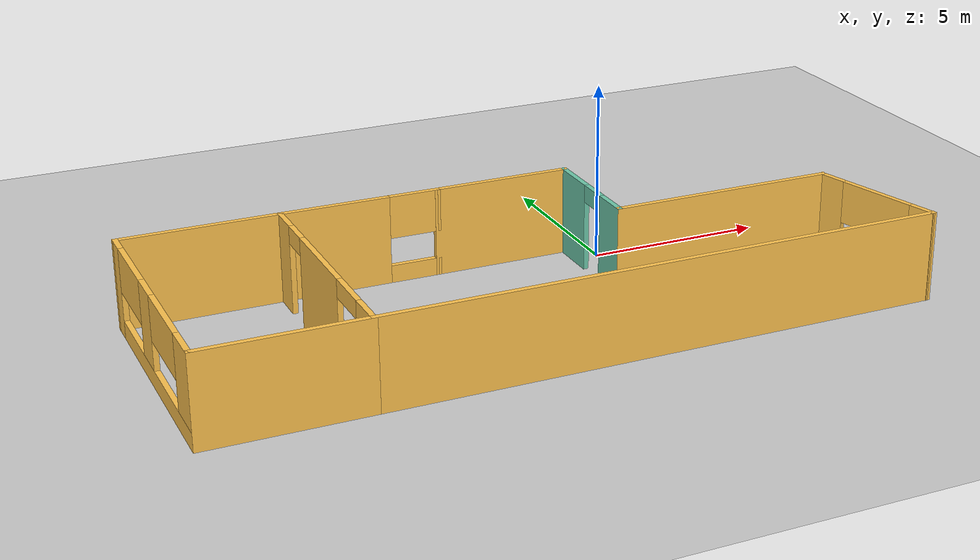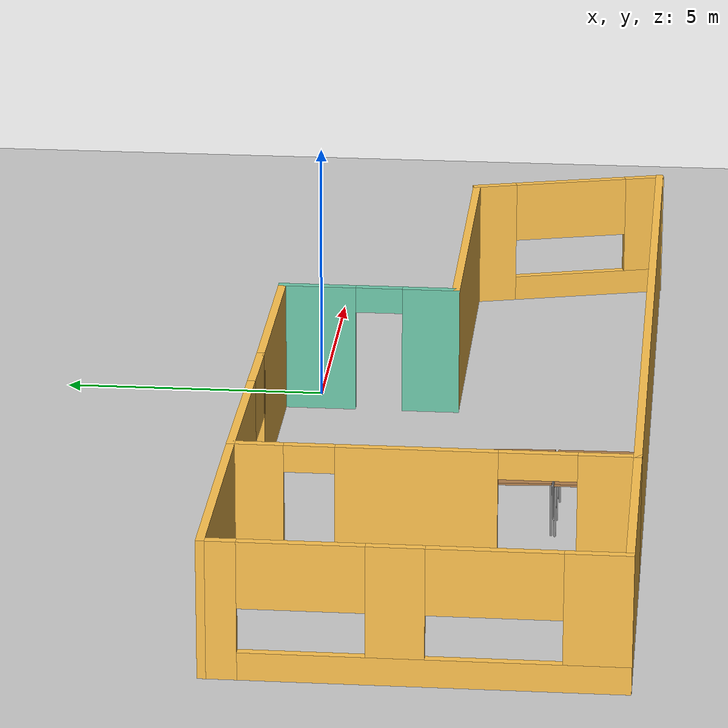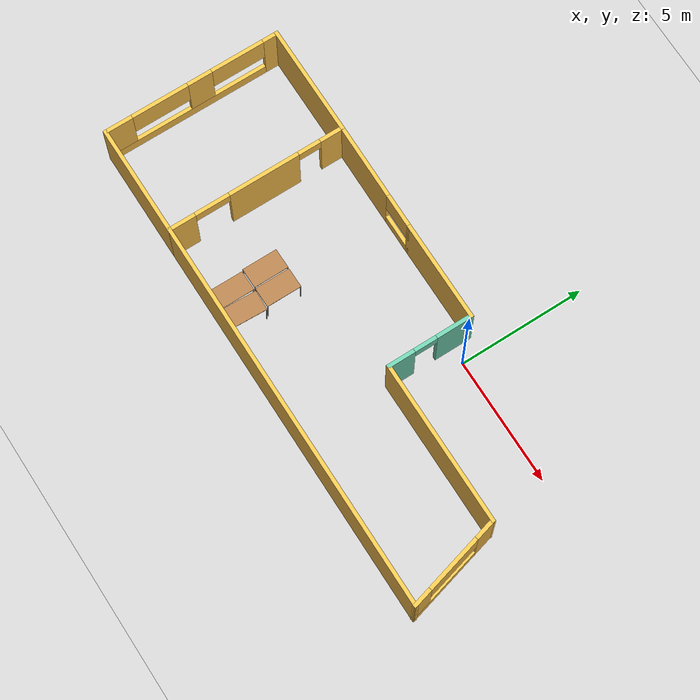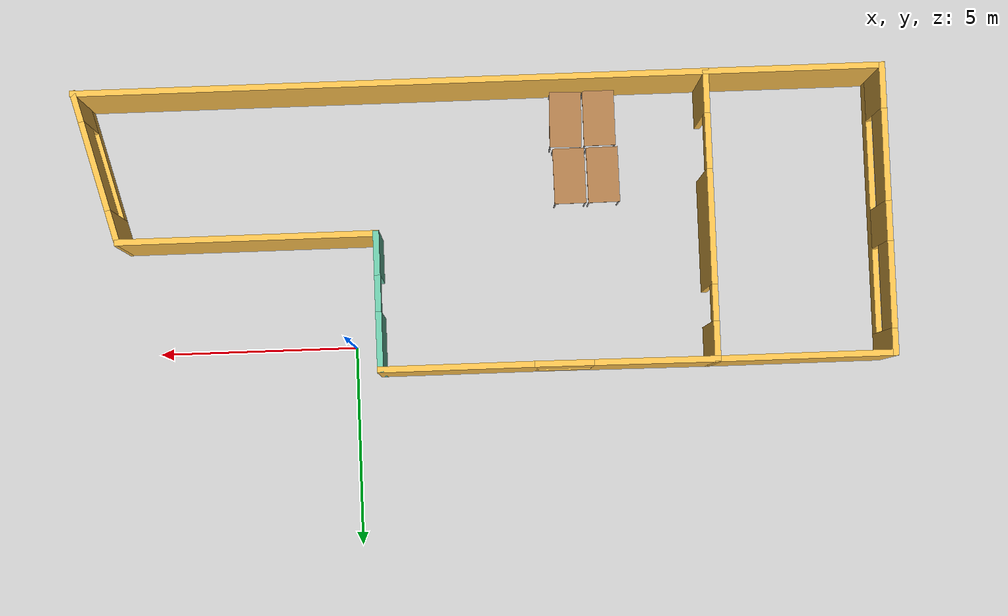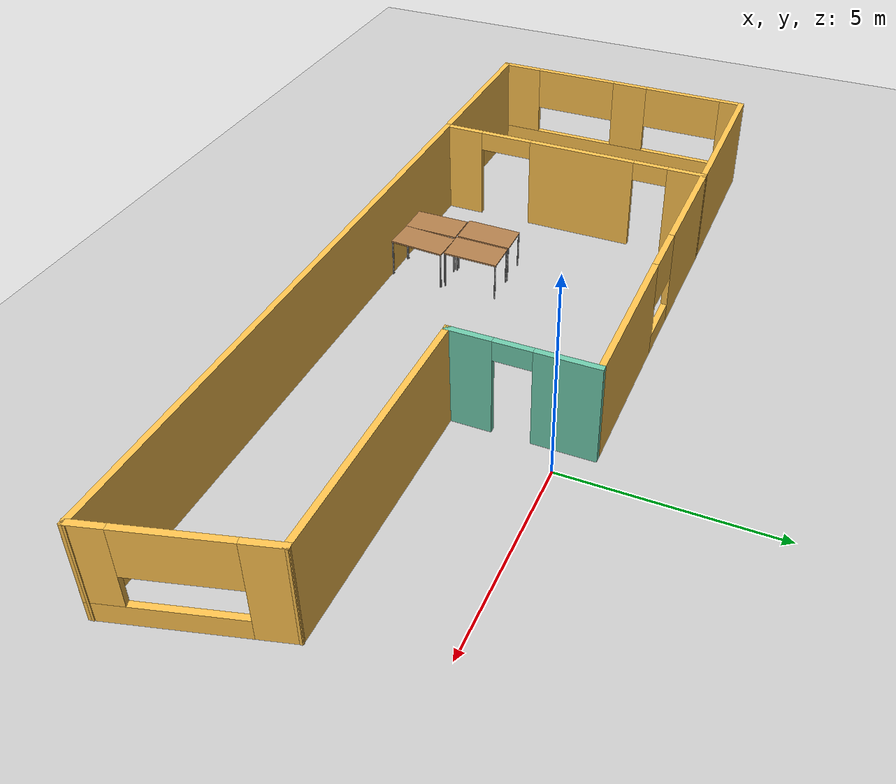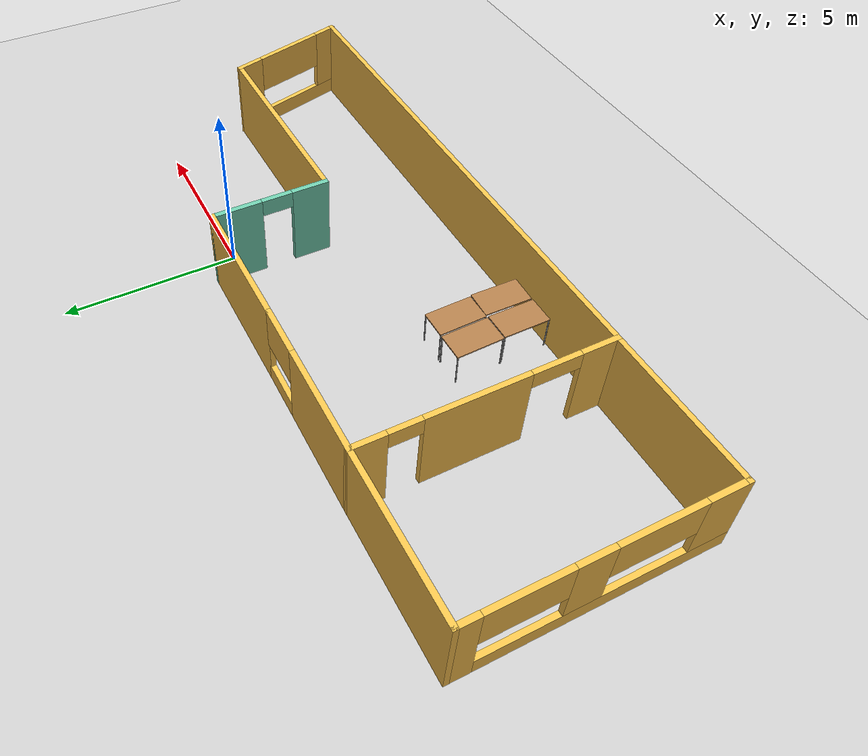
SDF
<sdf version="1.6">
 <world name="default">
  <light name="sun" type="directional">
   <pose>0 0 10 0 -0 0</pose>
   <diffuse>0.8 0.8 0.8 1</diffuse>
   <specular>0.1 0.1 0.1 1</specular>
   <attenuation>
    <range>1000</range>
    <constant>0.9</constant>
    <linear>0.01</linear>
    <quadratic>0.001</quadratic>
   </attenuation>
   <direction>-0.5 0.5 -1</direction>
  </light>
  <model name="ground_plane">
   <static>1</static>
   <link name="link">
    <collision name="collision">
     <geometry><plane><normal>0 0 1</normal><size>100 100</size></plane></geometry>
     <surface><friction><ode><mu>100</mu><mu2>50</mu2></ode></friction></surface>
    </collision>
    <visual name="visual">
     <cast_shadows>0</cast_shadows>
     <geometry><plane><normal>0 0 1</normal><size>100 100</size></plane></geometry>
     <material>
      <script><uri>file://media/materials/scripts/gazebo.material</uri><name>Gazebo/Grey</name></script>
     </material>
    </visual>
   </link>
  </model>
  <gravity>0 0 -9.8</gravity>
  <magnetic_field>6e-06 2.3e-05 -4.2e-05</magnetic_field>
  <atmosphere type="adiabatic"/>
  <physics name="default_physics" default="0" type="ode">
   <max_step_size>0.001</max_step_size>
   <real_time_factor>1</real_time_factor>
   <real_time_update_rate>1000</real_time_update_rate>
  </physics>
  <scene><ambient>0.4 0.4 0.4 1</ambient><background>0.7 0.7 0.7 1</background><shadows>1</shadows></scene>
  <spherical_coordinates>
   <surface_model>EARTH_WGS84</surface_model>
   <latitude_deg>0</latitude_deg>
   <longitude_deg>0</longitude_deg>
   <elevation>0</elevation>
   <heading_deg>0</heading_deg>
  </spherical_coordinates>
  <model name="simLab">
   <pose>-3.319 -2.84094 0 0 -0 0</pose>
   <link name="Wall_0">
    <collision name="Wall_0_Collision">
     <geometry><box><size>4 0.15 2.5</size></box></geometry>
     <pose>0 0 1.25 0 -0 0</pose>
    </collision>
    <visual name="Wall_0_Visual">
     <pose>0 0 1.25 0 -0 0</pose>
     <geometry><box><size>4 0.15 2.5</size></box></geometry>
     <material>
      <script><uri>file://media/materials/scripts/gazebo.material</uri><name>Gazebo/Grey</name></script>
      <ambient>1 0.764706 0.305882 1</ambient>
     </material>
    </visual>
    <pose>0.695119 3.52698 0 0 -0 0</pose>
   </link>
   <link name="Wall_1">
    <pose>2.62012 1.85198 0 0 0 -1.5708</pose>
    <visual name="Wall_1_Visual_0">
     <pose>-1.00222 0 1.25 0 -0 0</pose>
     <geometry><box><size>1.49556 0.15 2.5</size></box></geometry>
     <material>
      <script><uri>file://media/materials/scripts/gazebo.material</uri><name>Gazebo/Grey</name></script>
      <ambient>0.435294 0.796078 0.67451 1</ambient>
     </material>
    </visual>
    <collision name="Wall_1_Collision_0">
     <geometry><box><size>1.49556 0.15 2.5</size></box></geometry>
     <pose>-1.00222 0 1.25 0 -0 0</pose>
    </collision>
    <visual name="Wall_1_Visual_1">
     <pose>1.19778 0 1.25 0 -0 0</pose>
     <geometry><box><size>1.10444 0.15 2.5</size></box></geometry>
     <material>
      <script><uri>file://media/materials/scripts/gazebo.material</uri><name>Gazebo/Grey</name></script>
      <ambient>0.435294 0.796078 0.67451 1</ambient>
     </material>
    </visual>
    <collision name="Wall_1_Collision_1">
     <geometry><box><size>1.10444 0.15 2.5</size></box></geometry>
     <pose>1.19778 0 1.25 0 -0 0</pose>
    </collision>
    <visual name="Wall_1_Visual_2">
     <pose>0.195562 0 2.25 0 -0 0</pose>
     <geometry><box><size>0.9 0.15 0.5</size></box></geometry>
     <material>
      <script><uri>file://media/materials/scripts/gazebo.material</uri><name>Gazebo/Grey</name></script>
      <ambient>0.435294 0.796078 0.67451 1</ambient>
     </material>
    </visual>
    <collision name="Wall_1_Collision_2">
     <geometry><box><size>0.9 0.15 0.5</size></box></geometry>
     <pose>0.195562 0 2.25 0 -0 0</pose>
    </collision>
   </link>
   <link name="Wall_10">
    <collision name="Wall_10_Collision">
     <geometry><box><size>4.5 0.15 2.5</size></box></geometry>
     <pose>0 0 1.25 0 -0 0</pose>
    </collision>
    <visual name="Wall_10_Visual">
     <pose>0 0 1.25 0 -0 0</pose>
     <geometry><box><size>4.5 0.15 2.5</size></box></geometry>
     <material>
      <script><uri>file://media/materials/scripts/gazebo.material</uri><name>Gazebo/Grey</name></script>
      <ambient>1 0.764706 0.305882 1</ambient>
     </material>
    </visual>
    <pose>-7.80843 -3.54184 0 0 -0 0</pose>
   </link>
   <link name="Wall_2">
    <collision name="Wall_2_Collision">
     <geometry><box><size>6.5 0.15 2.5</size></box></geometry>
     <pose>0 0 1.25 0 -0 0</pose>
    </collision>
    <visual name="Wall_2_Visual">
     <pose>0 0 1.25 0 -0 0</pose>
     <geometry><box><size>6.5 0.15 2.5</size></box></geometry>
     <material>
      <script><uri>file://media/materials/scripts/gazebo.material</uri><name>Gazebo/Grey</name></script>
      <ambient>1 0.764706 0.305882 1</ambient>
     </material>
    </visual>
    <pose>5.79512 0.176978 0 0 -0 0</pose>
   </link>
   <link name="Wall_3">
    <pose>9.46835 -1.68243 0 0 0 -1.309</pose>
    <visual name="Wall_3_Visual_0">
     <pose>-1.551 0 1.25 0 -0 0</pose>
     <geometry><box><size>0.897996 0.15 2.5</size></box></geometry>
     <material>
      <script><uri>file://media/materials/scripts/gazebo.material</uri><name>Gazebo/Grey</name></script>
      <ambient>1 0.764706 0.305882 1</ambient>
     </material>
    </visual>
    <collision name="Wall_3_Collision_0">
     <geometry><box><size>0.897996 0.15 2.5</size></box></geometry>
     <pose>-1.551 0 1.25 0 -0 0</pose>
    </collision>
    <visual name="Wall_3_Visual_1">
     <pose>0.448998 0 0.25 0 -0 0</pose>
     <geometry><box><size>3.102 0.15 0.5</size></box></geometry>
     <material>
      <script><uri>file://media/materials/scripts/gazebo.material</uri><name>Gazebo/Grey</name></script>
      <ambient>1 0.764706 0.305882 1</ambient>
     </material>
    </visual>
    <collision name="Wall_3_Collision_1">
     <geometry><box><size>3.102 0.15 0.5</size></box></geometry>
     <pose>0.448998 0 0.25 0 -0 0</pose>
    </collision>
    <visual name="Wall_3_Visual_2">
     <pose>1.59736 0 1.5 0 -0 0</pose>
     <geometry><box><size>0.805283 0.15 2</size></box></geometry>
     <material>
      <script><uri>file://media/materials/scripts/gazebo.material</uri><name>Gazebo/Grey</name></script>
      <ambient>1 0.764706 0.305882 1</ambient>
     </material>
    </visual>
    <collision name="Wall_3_Collision_2">
     <geometry><box><size>0.805283 0.15 2</size></box></geometry>
     <pose>1.59736 0 1.5 0 -0 0</pose>
    </collision>
    <visual name="Wall_3_Visual_3">
     <pose>0.046357 0 1.9 0 -0 0</pose>
     <geometry><box><size>2.29672 0.15 1.2</size></box></geometry>
     <material>
      <script><uri>file://media/materials/scripts/gazebo.material</uri><name>Gazebo/Grey</name></script>
      <ambient>1 0.764706 0.305882 1</ambient>
     </material>
    </visual>
    <collision name="Wall_3_Collision_3">
     <geometry><box><size>2.29672 0.15 1.2</size></box></geometry>
     <pose>0.046357 0 1.9 0 -0 0</pose>
    </collision>
   </link>
   <link name="Wall_4">
    <collision name="Wall_4_Collision">
     <geometry><box><size>15.75 0.15 2.5</size></box></geometry>
     <pose>0 0 1.25 0 -0 0</pose>
    </collision>
    <visual name="Wall_4_Visual">
     <pose>0 0 1.25 0 -0 0</pose>
     <geometry><box><size>15.75 0.15 2.5</size></box></geometry>
     <material>
      <script><uri>file://media/materials/scripts/gazebo.material</uri><name>Gazebo/Grey</name></script>
      <ambient>1 0.764706 0.305882 1</ambient>
     </material>
    </visual>
    <pose>2.16657 -3.54184 0 0 -0 3.14159</pose>
   </link>
   <link name="Wall_5">
    <pose>-5.63343 0.008163 0 0 -0 1.5708</pose>
    <visual name="Wall_5_Visual_0">
     <pose>-3.06885 0 1.25 0 -0 0</pose>
     <geometry><box><size>1.1123 0.15 2.5</size></box></geometry>
     <material>
      <script><uri>file://media/materials/scripts/gazebo.material</uri><name>Gazebo/Grey</name></script>
      <ambient>1 0.764706 0.305882 1</ambient>
     </material>
    </visual>
    <collision name="Wall_5_Collision_0">
     <geometry><box><size>1.1123 0.15 2.5</size></box></geometry>
     <pose>-3.06885 0 1.25 0 -0 0</pose>
    </collision>
    <visual name="Wall_5_Visual_1">
     <pose>0.295614 0 1.25 0 -0 0</pose>
     <geometry><box><size>2.85118 0.15 2.5</size></box></geometry>
     <material>
      <script><uri>file://media/materials/scripts/gazebo.material</uri><name>Gazebo/Grey</name></script>
      <ambient>1 0.764706 0.305882 1</ambient>
     </material>
    </visual>
    <collision name="Wall_5_Collision_1">
     <geometry><box><size>2.85118 0.15 2.5</size></box></geometry>
     <pose>0.295614 0 1.25 0 -0 0</pose>
    </collision>
    <visual name="Wall_5_Visual_2">
     <pose>3.1231 0 1.25 0 -0 0</pose>
     <geometry><box><size>1.00379 0.15 2.5</size></box></geometry>
     <material>
      <script><uri>file://media/materials/scripts/gazebo.material</uri><name>Gazebo/Grey</name></script>
      <ambient>1 0.764706 0.305882 1</ambient>
     </material>
    </visual>
    <collision name="Wall_5_Collision_2">
     <geometry><box><size>1.00379 0.15 2.5</size></box></geometry>
     <pose>3.1231 0 1.25 0 -0 0</pose>
    </collision>
    <visual name="Wall_5_Visual_3">
     <pose>-1.82134 0 2.25 0 -0 0</pose>
     <geometry><box><size>1.38273 0.15 0.5</size></box></geometry>
     <material>
      <script><uri>file://media/materials/scripts/gazebo.material</uri><name>Gazebo/Grey</name></script>
      <ambient>1 0.764706 0.305882 1</ambient>
     </material>
    </visual>
    <collision name="Wall_5_Collision_3">
     <geometry><box><size>1.38273 0.15 0.5</size></box></geometry>
     <pose>-1.82134 0 2.25 0 -0 0</pose>
    </collision>
    <visual name="Wall_5_Visual_4">
     <pose>2.17121 0 2.25 0 -0 0</pose>
     <geometry><box><size>0.9 0.15 0.5</size></box></geometry>
     <material>
      <script><uri>file://media/materials/scripts/gazebo.material</uri><name>Gazebo/Grey</name></script>
      <ambient>1 0.764706 0.305882 1</ambient>
     </material>
    </visual>
    <collision name="Wall_5_Collision_4">
     <geometry><box><size>0.9 0.15 0.5</size></box></geometry>
     <pose>2.17121 0 2.25 0 -0 0</pose>
    </collision>
   </link>
   <link name="Wall_6">
    <pose>-3.43165 3.54257 0 0 0 -0.007082</pose>
    <visual name="Wall_6_Visual_0">
     <pose>-0.729772 0 1.25 0 -0 0</pose>
     <geometry><box><size>3.09411 0.15 2.5</size></box></geometry>
     <material>
      <script><uri>file://media/materials/scripts/gazebo.material</uri><name>Gazebo/Grey</name></script>
      <ambient>1 0.764706 0.305882 1</ambient>
     </material>
    </visual>
    <collision name="Wall_6_Collision_0">
     <geometry><box><size>3.09411 0.15 2.5</size></box></geometry>
     <pose>-0.729772 0 1.25 0 -0 0</pose>
    </collision>
    <visual name="Wall_6_Visual_1">
     <pose>1.54706 0 0.25 0 -0 0</pose>
     <geometry><box><size>1.45954 0.15 0.5</size></box></geometry>
     <material>
      <script><uri>file://media/materials/scripts/gazebo.material</uri><name>Gazebo/Grey</name></script>
      <ambient>1 0.764706 0.305882 1</ambient>
     </material>
    </visual>
    <collision name="Wall_6_Collision_1">
     <geometry><box><size>1.45954 0.15 0.5</size></box></geometry>
     <pose>1.54706 0 0.25 0 -0 0</pose>
    </collision>
    <visual name="Wall_6_Visual_2">
     <pose>1.54706 0 1.9 0 -0 0</pose>
     <geometry><box><size>1.45954 0.15 1.2</size></box></geometry>
     <material>
      <script><uri>file://media/materials/scripts/gazebo.material</uri><name>Gazebo/Grey</name></script>
      <ambient>1 0.764706 0.305882 1</ambient>
     </material>
    </visual>
    <collision name="Wall_6_Collision_2">
     <geometry><box><size>1.45954 0.15 1.2</size></box></geometry>
     <pose>1.54706 0 1.9 0 -0 0</pose>
    </collision>
   </link>
   <link name="Wall_8">
    <collision name="Wall_8_Collision">
     <geometry><box><size>4.5 0.15 2.5</size></box></geometry>
     <pose>0 0 1.25 0 -0 0</pose>
    </collision>
    <visual name="Wall_8_Visual">
     <pose>0 0 1.25 0 -0 0</pose>
     <geometry><box><size>4.5 0.15 2.5</size></box></geometry>
     <material>
      <script><uri>file://media/materials/scripts/gazebo.material</uri><name>Gazebo/Grey</name></script>
      <ambient>1 0.764706 0.305882 1</ambient>
     </material>
    </visual>
    <pose>-7.80843 3.55816 0 0 -0 3.14159</pose>
   </link>
   <link name="Wall_9">
    <pose>-9.98343 0.008163 0 0 0 -1.5708</pose>
    <visual name="Wall_9_Visual_0">
     <pose>-3.28918 0 1.25 0 -0 0</pose>
     <geometry><box><size>0.671637 0.15 2.5</size></box></geometry>
     <material>
      <script><uri>file://media/materials/scripts/gazebo.material</uri><name>Gazebo/Grey</name></script>
      <ambient>1 0.764706 0.305882 1</ambient>
     </material>
    </visual>
    <collision name="Wall_9_Collision_0">
     <geometry><box><size>0.671637 0.15 2.5</size></box></geometry>
     <pose>-3.28918 0 1.25 0 -0 0</pose>
    </collision>
    <visual name="Wall_9_Visual_1">
     <pose>0.335819 0 0.25 0 -0 0</pose>
     <geometry><box><size>6.57836 0.15 0.5</size></box></geometry>
     <material>
      <script><uri>file://media/materials/scripts/gazebo.material</uri><name>Gazebo/Grey</name></script>
      <ambient>1 0.764706 0.305882 1</ambient>
     </material>
    </visual>
    <collision name="Wall_9_Collision_1">
     <geometry><box><size>6.57836 0.15 0.5</size></box></geometry>
     <pose>0.335819 0 0.25 0 -0 0</pose>
    </collision>
    <visual name="Wall_9_Visual_2">
     <pose>-0.3107 0 1.5 0 -0 0</pose>
     <geometry><box><size>0.990108 0.15 2</size></box></geometry>
     <material>
      <script><uri>file://media/materials/scripts/gazebo.material</uri><name>Gazebo/Grey</name></script>
      <ambient>1 0.764706 0.305882 1</ambient>
     </material>
    </visual>
    <collision name="Wall_9_Collision_2">
     <geometry><box><size>0.990108 0.15 2</size></box></geometry>
     <pose>-0.3107 0 1.5 0 -0 0</pose>
    </collision>
    <visual name="Wall_9_Visual_3">
     <pose>3.04888 0 1.5 0 -0 0</pose>
     <geometry><box><size>1.15224 0.15 2</size></box></geometry>
     <material>
      <script><uri>file://media/materials/scripts/gazebo.material</uri><name>Gazebo/Grey</name></script>
      <ambient>1 0.764706 0.305882 1</ambient>
     </material>
    </visual>
    <collision name="Wall_9_Collision_3">
     <geometry><box><size>1.15224 0.15 2</size></box></geometry>
     <pose>3.04888 0 1.5 0 -0 0</pose>
    </collision>
    <visual name="Wall_9_Visual_4">
     <pose>-1.87956 0 1.9 0 -0 0</pose>
     <geometry><box><size>2.14761 0.15 1.2</size></box></geometry>
     <material>
      <script><uri>file://media/materials/scripts/gazebo.material</uri><name>Gazebo/Grey</name></script>
      <ambient>1 0.764706 0.305882 1</ambient>
     </material>
    </visual>
    <collision name="Wall_9_Collision_4">
     <geometry><box><size>2.14761 0.15 1.2</size></box></geometry>
     <pose>-1.87956 0 1.9 0 -0 0</pose>
    </collision>
    <visual name="Wall_9_Visual_5">
     <pose>1.32856 0 1.9 0 -0 0</pose>
     <geometry><box><size>2.2884 0.15 1.2</size></box></geometry>
     <material>
      <script><uri>file://media/materials/scripts/gazebo.material</uri><name>Gazebo/Grey</name></script>
      <ambient>1 0.764706 0.305882 1</ambient>
     </material>
    </visual>
    <collision name="Wall_9_Collision_5">
     <geometry><box><size>2.2884 0.15 1.2</size></box></geometry>
     <pose>1.32856 0 1.9 0 -0 0</pose>
    </collision>
   </link>
   <static>1</static>
  </model>
  <model name="table">
   <static>0</static>
   <link name="link">
    <collision name="surface">
     <pose>0 0 1 0 -0 0</pose>
     <geometry><box><size>1.5 0.8 0.03</size></box></geometry>
     <surface><friction><ode><mu>0.6</mu><mu2>0.6</mu2></ode></friction></surface>
    </collision>
    <visual name="visual1">
     <pose>0 0 1 0 -0 0</pose>
     <geometry><box><size>1.4 0.8 0.04</size></box></geometry>
     <material>
      <script><uri>file://media/materials/scripts/gazebo.material</uri><name>Gazebo/Wood</name></script>
     </material>
    </visual>
    <collision name="front_left_leg">
     <pose>0.68 0.38 0.5 0 -0 0</pose>
     <geometry><cylinder><radius>0.02</radius><length>1</length></cylinder></geometry>
    </collision>
    <visual name="front_left_leg">
     <pose>0.68 0.38 0.5 0 -0 0</pose>
     <geometry><cylinder><radius>0.02</radius><length>1</length></cylinder></geometry>
     <material>
      <script><uri>file://media/materials/scripts/gazebo.material</uri><name>Gazebo/Grey</name></script>
     </material>
    </visual>
    <collision name="front_right_leg">
     <pose>0.68 -0.38 0.5 0 -0 0</pose>
     <geometry><cylinder><radius>0.02</radius><length>1</length></cylinder></geometry>
    </collision>
    <visual name="front_right_leg">
     <pose>0.68 -0.38 0.5 0 -0 0</pose>
     <geometry><cylinder><radius>0.02</radius><length>1</length></cylinder></geometry>
     <material>
      <script><uri>file://media/materials/scripts/gazebo.material</uri><name>Gazebo/Grey</name></script>
     </material>
    </visual>
    <collision name="back_right_leg">
     <pose>-0.68 -0.38 0.5 0 -0 0</pose>
     <geometry><cylinder><radius>0.02</radius><length>1</length></cylinder></geometry>
    </collision>
    <visual name="back_right_leg">
     <pose>-0.68 -0.38 0.5 0 -0 0</pose>
     <geometry><cylinder><radius>0.02</radius><length>1</length></cylinder></geometry>
     <material>
      <script><uri>file://media/materials/scripts/gazebo.material</uri><name>Gazebo/Grey</name></script>
     </material>
    </visual>
    <collision name="back_left_leg">
     <pose>-0.68 0.38 0.5 0 -0 0</pose>
     <geometry><cylinder><radius>0.02</radius><length>1</length></cylinder></geometry>
    </collision>
    <visual name="back_left_leg">
     <pose>-0.68 0.38 0.5 0 -0 0</pose>
     <geometry><cylinder><radius>0.02</radius><length>1</length></cylinder></geometry>
     <material>
      <script><uri>file://media/materials/scripts/gazebo.material</uri><name>Gazebo/Grey</name></script>
     </material>
    </visual>
    <inertial>
     <inertia><ixx>1</ixx><ixy>0</ixy><ixz>0</ixz><iyy>1</iyy><iyz>0</iyz><izz>1</izz></inertia>
     <mass>1</mass>
    </inertial>
   </link>
   <pose>-5.52239 -5.56598 0.015059 -1e-06 0.021515 1.53685</pose>
  </model>
  <model name="table_clone">
   <static>0</static>
   <link name="link">
    <collision name="surface">
     <pose>0 0 1 0 -0 0</pose>
     <geometry><box><size>1.5 0.8 0.03</size></box></geometry>
     <surface><friction><ode><mu>0.6</mu><mu2>0.6</mu2></ode></friction></surface>
    </collision>
    <visual name="visual1">
     <pose>0 0 1 0 -0 0</pose>
     <geometry><box><size>1.4 0.8 0.04</size></box></geometry>
     <material>
      <script><uri>file://media/materials/scripts/gazebo.material</uri><name>Gazebo/Wood</name></script>
     </material>
    </visual>
    <collision name="front_left_leg">
     <pose>0.68 0.38 0.5 0 -0 0</pose>
     <geometry><cylinder><radius>0.02</radius><length>1</length></cylinder></geometry>
    </collision>
    <visual name="front_left_leg">
     <pose>0.68 0.38 0.5 0 -0 0</pose>
     <geometry><cylinder><radius>0.02</radius><length>1</length></cylinder></geometry>
     <material>
      <script><uri>file://media/materials/scripts/gazebo.material</uri><name>Gazebo/Grey</name></script>
     </material>
    </visual>
    <collision name="front_right_leg">
     <pose>0.68 -0.38 0.5 0 -0 0</pose>
     <geometry><cylinder><radius>0.02</radius><length>1</length></cylinder></geometry>
    </collision>
    <visual name="front_right_leg">
     <pose>0.68 -0.38 0.5 0 -0 0</pose>
     <geometry><cylinder><radius>0.02</radius><length>1</length></cylinder></geometry>
     <material>
      <script><uri>file://media/materials/scripts/gazebo.material</uri><name>Gazebo/Grey</name></script>
     </material>
    </visual>
    <collision name="back_right_leg">
     <pose>-0.68 -0.38 0.5 0 -0 0</pose>
     <geometry><cylinder><radius>0.02</radius><length>1</length></cylinder></geometry>
    </collision>
    <visual name="back_right_leg">
     <pose>-0.68 -0.38 0.5 0 -0 0</pose>
     <geometry><cylinder><radius>0.02</radius><length>1</length></cylinder></geometry>
     <material>
      <script><uri>file://media/materials/scripts/gazebo.material</uri><name>Gazebo/Grey</name></script>
     </material>
    </visual>
    <collision name="back_left_leg">
     <pose>-0.68 0.38 0.5 0 -0 0</pose>
     <geometry><cylinder><radius>0.02</radius><length>1</length></cylinder></geometry>
    </collision>
    <visual name="back_left_leg">
     <pose>-0.68 0.38 0.5 0 -0 0</pose>
     <geometry><cylinder><radius>0.02</radius><length>1</length></cylinder></geometry>
     <material>
      <script><uri>file://media/materials/scripts/gazebo.material</uri><name>Gazebo/Grey</name></script>
     </material>
    </visual>
    <inertial>
     <inertia><ixx>1</ixx><ixy>0</ixy><ixz>0</ixz><iyy>1</iyy><iyz>0</iyz><izz>1</izz></inertia>
     <mass>1</mass>
    </inertial>
   </link>
   <pose>-6.36975 -5.55769 2.5e-05 -3e-06 3.7e-05 1.57049</pose>
  </model>
  <model name="table_clone_0">
   <static>0</static>
   <link name="link">
    <collision name="surface">
     <pose>0 0 1 0 -0 0</pose>
     <geometry><box><size>1.5 0.8 0.03</size></box></geometry>
     <surface><friction><ode><mu>0.6</mu><mu2>0.6</mu2></ode></friction></surface>
    </collision>
    <visual name="visual1">
     <pose>0 0 1 0 -0 0</pose>
     <geometry><box><size>1.4 0.8 0.04</size></box></geometry>
     <material>
      <script><uri>file://media/materials/scripts/gazebo.material</uri><name>Gazebo/Wood</name></script>
     </material>
    </visual>
    <collision name="front_left_leg">
     <pose>0.68 0.38 0.5 0 -0 0</pose>
     <geometry><cylinder><radius>0.02</radius><length>1</length></cylinder></geometry>
    </collision>
    <visual name="front_left_leg">
     <pose>0.68 0.38 0.5 0 -0 0</pose>
     <geometry><cylinder><radius>0.02</radius><length>1</length></cylinder></geometry>
     <material>
      <script><uri>file://media/materials/scripts/gazebo.material</uri><name>Gazebo/Grey</name></script>
     </material>
    </visual>
    <collision name="front_right_leg">
     <pose>0.68 -0.38 0.5 0 -0 0</pose>
     <geometry><cylinder><radius>0.02</radius><length>1</length></cylinder></geometry>
    </collision>
    <visual name="front_right_leg">
     <pose>0.68 -0.38 0.5 0 -0 0</pose>
     <geometry><cylinder><radius>0.02</radius><length>1</length></cylinder></geometry>
     <material>
      <script><uri>file://media/materials/scripts/gazebo.material</uri><name>Gazebo/Grey</name></script>
     </material>
    </visual>
    <collision name="back_right_leg">
     <pose>-0.68 -0.38 0.5 0 -0 0</pose>
     <geometry><cylinder><radius>0.02</radius><length>1</length></cylinder></geometry>
    </collision>
    <visual name="back_right_leg">
     <pose>-0.68 -0.38 0.5 0 -0 0</pose>
     <geometry><cylinder><radius>0.02</radius><length>1</length></cylinder></geometry>
     <material>
      <script><uri>file://media/materials/scripts/gazebo.material</uri><name>Gazebo/Grey</name></script>
     </material>
    </visual>
    <collision name="back_left_leg">
     <pose>-0.68 0.38 0.5 0 -0 0</pose>
     <geometry><cylinder><radius>0.02</radius><length>1</length></cylinder></geometry>
    </collision>
    <visual name="back_left_leg">
     <pose>-0.68 0.38 0.5 0 -0 0</pose>
     <geometry><cylinder><radius>0.02</radius><length>1</length></cylinder></geometry>
     <material>
      <script><uri>file://media/materials/scripts/gazebo.material</uri><name>Gazebo/Grey</name></script>
     </material>
    </visual>
    <inertial>
     <inertia><ixx>1</ixx><ixy>0</ixy><ixz>0</ixz><iyy>1</iyy><iyz>0</iyz><izz>1</izz></inertia>
     <mass>1</mass>
    </inertial>
   </link>
   <pose>-6.41756 -4.13259 0.015189 1.4e-05 0.021692 1.58111</pose>
  </model>
  <model name="table_clone_1">
   <static>0</static>
   <link name="link">
    <collision name="surface">
     <pose>0 0 1 0 -0 0</pose>
     <geometry><box><size>1.5 0.8 0.03</size></box></geometry>
     <surface><friction><ode><mu>0.6</mu><mu2>0.6</mu2></ode></friction></surface>
    </collision>
    <visual name="visual1">
     <pose>0 0 1 0 -0 0</pose>
     <geometry><box><size>1.4 0.8 0.04</size></box></geometry>
     <material>
      <script><uri>file://media/materials/scripts/gazebo.material</uri><name>Gazebo/Wood</name></script>
     </material>
    </visual>
    <collision name="front_left_leg">
     <pose>0.68 0.38 0.5 0 -0 0</pose>
     <geometry><cylinder><radius>0.02</radius><length>1</length></cylinder></geometry>
    </collision>
    <visual name="front_left_leg">
     <pose>0.68 0.38 0.5 0 -0 0</pose>
     <geometry><cylinder><radius>0.02</radius><length>1</length></cylinder></geometry>
     <material>
      <script><uri>file://media/materials/scripts/gazebo.material</uri><name>Gazebo/Grey</name></script>
     </material>
    </visual>
    <collision name="front_right_leg">
     <pose>0.68 -0.38 0.5 0 -0 0</pose>
     <geometry><cylinder><radius>0.02</radius><length>1</length></cylinder></geometry>
    </collision>
    <visual name="front_right_leg">
     <pose>0.68 -0.38 0.5 0 -0 0</pose>
     <geometry><cylinder><radius>0.02</radius><length>1</length></cylinder></geometry>
     <material>
      <script><uri>file://media/materials/scripts/gazebo.material</uri><name>Gazebo/Grey</name></script>
     </material>
    </visual>
    <collision name="back_right_leg">
     <pose>-0.68 -0.38 0.5 0 -0 0</pose>
     <geometry><cylinder><radius>0.02</radius><length>1</length></cylinder></geometry>
    </collision>
    <visual name="back_right_leg">
     <pose>-0.68 -0.38 0.5 0 -0 0</pose>
     <geometry><cylinder><radius>0.02</radius><length>1</length></cylinder></geometry>
     <material>
      <script><uri>file://media/materials/scripts/gazebo.material</uri><name>Gazebo/Grey</name></script>
     </material>
    </visual>
    <collision name="back_left_leg">
     <pose>-0.68 0.38 0.5 0 -0 0</pose>
     <geometry><cylinder><radius>0.02</radius><length>1</length></cylinder></geometry>
    </collision>
    <visual name="back_left_leg">
     <pose>-0.68 0.38 0.5 0 -0 0</pose>
     <geometry><cylinder><radius>0.02</radius><length>1</length></cylinder></geometry>
     <material>
      <script><uri>file://media/materials/scripts/gazebo.material</uri><name>Gazebo/Grey</name></script>
     </material>
    </visual>
    <inertial>
     <inertia><ixx>1</ixx><ixy>0</ixy><ixz>0</ixz><iyy>1</iyy><iyz>0</iyz><izz>1</izz></inertia>
     <mass>1</mass>
    </inertial>
   </link>
   <pose>-5.56859 -4.12942 0.014787 -1e-06 0.021125 1.57889</pose>
  </model>
 </world>
</sdf>
